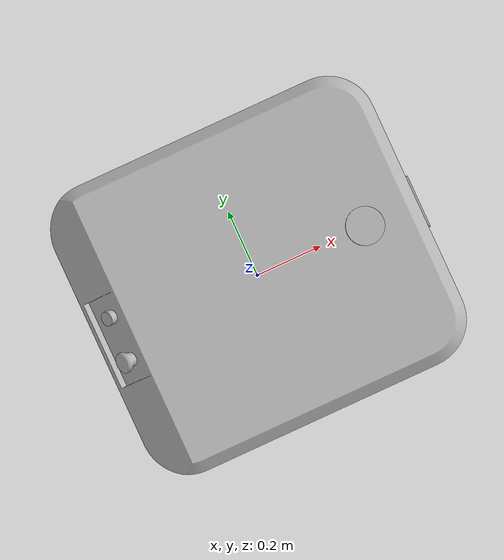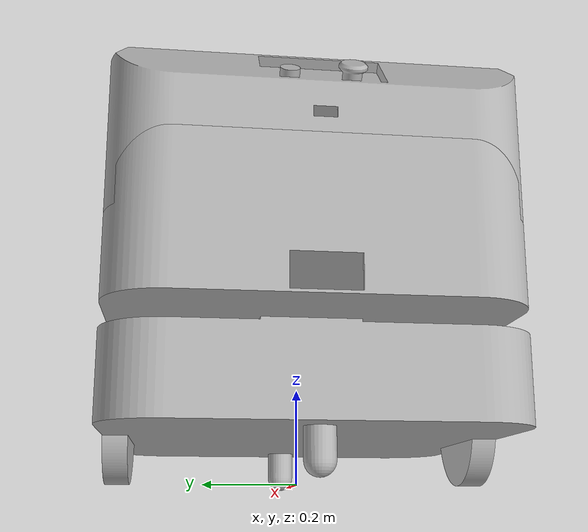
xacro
<?xml version="1.0" ?>
<robot name="mack" xmlns:xacro="http://www.ros.org/wiki/xacro">

<xacro:include filename="$(find mack_description)/urdf/materials.xacro" />
<xacro:include filename="$(find mack_description)/urdf/mack.trans" />
<xacro:include filename="$(find mack_description)/urdf/mack.gazebo" />

<link name="base_footprint">
  <visual>
    <origin xyz="0 0 0" rpy="0 0 0" />
    <geometry>
      <box size="0.0 0.0 0.0" />
    </geometry>
  </visual>
</link>

<joint name="fixed_base_joint" type="fixed">
  <parent link="base_footprint" />
  <child link="base_link" />
  <origin xyz="0 0 0" rpy="0 0 0" />
</joint>

<link name="base_link">
  <inertial>
    <origin xyz="-0.0007778903135426677 1.6502875620097167e-15 0.17822345657872354" rpy="0 0 0"/>
    <mass value="10.99878354396862"/>
    <inertia ixx="1.263419" iyy="1.444654" izz="2.497445" ixy="0.0" iyz="0.0" ixz="0.002027"/>
  </inertial>
  <visual>
    <origin xyz="0 0 0" rpy="0 0 0"/>
    <geometry>
      <mesh filename="file://$(find mack_description)/meshes/base_link.stl" scale="0.001 0.001 0.001"/>
    </geometry>
    <material name="silver"/>
  </visual>
  <collision>
    <origin xyz="0 0 0" rpy="0 0 0"/>
    <geometry>
      <mesh filename="file://$(find mack_description)/meshes/base_link.stl" scale="0.001 0.001 0.001"/>
    </geometry>
  </collision>
</link>

<link name="wheel_left_1">
  <inertial>
    <origin xyz="-2.2300015108860395e-14 -0.025290220820189058 -4.163336342344337e-17" rpy="0 0 0"/>
    <mass value="2.315432325512016"/>
    <inertia ixx="0.009481" iyy="0.017836" izz="0.009481" ixy="0.0" iyz="0.0" ixz="0.0"/>
  </inertial>
  <visual>
    <origin xyz="-0.0 0.35 -0.125" rpy="0 0 0"/>
    <geometry>
      <mesh filename="file://$(find mack_description)/meshes/wheel_left_1.stl" scale="0.001 0.001 0.001"/>
    </geometry>
    <material name="silver"/>
  </visual>
  <collision>
    <origin xyz="-0.0 0.35 -0.125" rpy="0 0 0"/>
    <geometry>
      <mesh filename="file://$(find mack_description)/meshes/wheel_left_1.stl" scale="0.001 0.001 0.001"/>
    </geometry>
  </collision>
</link>

<link name="wheel_right_1">
  <inertial>
    <origin xyz="-2.2238780663796043e-14 0.02529022082018928 -5.551115123125783e-17" rpy="0 0 0"/>
    <mass value="2.315432325512018"/>
    <inertia ixx="0.009481" iyy="0.017836" izz="0.009481" ixy="-0.0" iyz="-0.0" ixz="0.0"/>
  </inertial>
  <visual>
    <origin xyz="-0.0 -0.35 -0.125" rpy="0 0 0"/>
    <geometry>
      <mesh filename="file://$(find mack_description)/meshes/wheel_right_1.stl" scale="0.001 0.001 0.001"/>
    </geometry>
    <material name="silver"/>
  </visual>
  <collision>
    <origin xyz="-0.0 -0.35 -0.125" rpy="0 0 0"/>
    <geometry>
      <mesh filename="file://$(find mack_description)/meshes/wheel_right_1.stl" scale="0.001 0.001 0.001"/>
    </geometry>
  </collision>
</link>

<link name="floor2_1">
  <inertial>
    <origin xyz="0.004230213162797551 -2.749670496953375e-06 0.16565647169661446" rpy="0 0 0"/>
    <mass value="8.920345906190907"/>
    <inertia ixx="1.75095" iyy="1.931745" izz="2.974313" ixy="-1.9e-05" iyz="4e-06" ixz="-0.020385"/>
  </inertial>
  <visual>
    <origin xyz="-0.0 -0.0 -0.475" rpy="0 0 0"/>
    <geometry>
      <mesh filename="file://$(find mack_description)/meshes/floor2_1.stl" scale="0.001 0.001 0.001"/>
    </geometry>
    <material name="silver"/>
  </visual>
  <collision>
    <origin xyz="-0.0 -0.0 -0.475" rpy="0 0 0"/>
    <geometry>
      <mesh filename="file://$(find mack_description)/meshes/floor2_1.stl" scale="0.001 0.001 0.001"/>
    </geometry>
  </collision>
</link>

<link name="floor1_1">
  <inertial>
    <origin xyz="0.22623337099373322 1.7191798888926132e-16 0.10706606465888041" rpy="0 0 0"/>
    <mass value="8.28321579164062"/>
    <inertia ixx="1.292381" iyy="1.907305" izz="2.907554" ixy="0.0" iyz="-0.0" ixz="0.00152"/>
  </inertial>
  <visual>
    <origin xyz="0.225 -0.0 -0.31" rpy="0 0 0"/>
    <geometry>
      <mesh filename="file://$(find mack_description)/meshes/floor1_1.stl" scale="0.001 0.001 0.001"/>
    </geometry>
    <material name="silver"/>
  </visual>
  <collision>
    <origin xyz="0.225 -0.0 -0.31" rpy="0 0 0"/>
    <geometry>
      <mesh filename="file://$(find mack_description)/meshes/floor1_1.stl" scale="0.001 0.001 0.001"/>
    </geometry>
  </collision>
</link>

<link name="name_plate_1">
  <inertial>
    <origin xyz="0.05739682073390919 -0.0009999999999998344 -0.008647682156512404" rpy="0 0 0"/>
    <mass value="0.060008993223901956"/>
    <inertia ixx="5.2e-05" iyy="0.001148" izz="0.001097" ixy="0.0" iyz="0.0" ixz="3e-06"/>
  </inertial>
  <visual>
    <origin xyz="-0.0 0.4 -0.3925" rpy="0 0 0"/>
    <geometry>
      <mesh filename="file://$(find mack_description)/meshes/name_plate_1.stl" scale="0.001 0.001 0.001"/>
    </geometry>
    <material name="silver"/>
  </visual>
  <collision>
    <origin xyz="-0.0 0.4 -0.3925" rpy="0 0 0"/>
    <geometry>
      <mesh filename="file://$(find mack_description)/meshes/name_plate_1.stl" scale="0.001 0.001 0.001"/>
    </geometry>
  </collision>
</link>

<link name="lidar_1">
  <inertial>
    <origin xyz="-0.06 3.124274621132771e-17 0.009999999999999898" rpy="0 0 0"/>
    <mass value="0.166504410640259"/>
    <inertia ixx="0.00011" iyy="0.00011" izz="0.000208" ixy="-0.0" iyz="0.0" ixz="-0.0"/>
  </inertial>
  <visual>
    <origin xyz="-0.42 -0.0 -0.80" rpy="0 0 0"/>
    <geometry>
      <mesh filename="file://$(find mack_description)/meshes/lidar_1.stl" scale="0.001 0.001 0.001"/>
    </geometry>
    <material name="silver"/>
  </visual>
  <collision>
    <origin xyz="-0.42 -0.0 -0.80" rpy="0 0 0"/>
    <geometry>
      <mesh filename="file://$(find mack_description)/meshes/lidar_1.stl" scale="0.001 0.001 0.001"/>
    </geometry>
  </collision>
</link>

<link name="camera_1">
  <inertial>
    <origin xyz="0.004792230992219593 -0.00030298214458913107 3.116480004006217e-05" rpy="0 0 0"/>
    <mass value="0.03701026018938745"/>
    <inertia ixx="6.2e-05" iyy="3e-06" izz="6e-05" ixy="0.0" iyz="-0.0" ixz="-0.0"/>
  </inertial>
  <visual>
    <origin xyz="-0.45 -0.0 -0.695" rpy="0 0 0"/>
    <geometry>
      <mesh filename="file://$(find mack_description)/meshes/camera_1.stl" scale="0.001 0.001 0.001"/>
    </geometry>
    <material name="silver"/>
  </visual>
  <collision>
    <origin xyz="-0.45 -0.0 -0.695" rpy="0 0 0"/>
    <geometry>
      <mesh filename="file://$(find mack_description)/meshes/camera_1.stl" scale="0.001 0.001 0.001"/>
    </geometry>
  </collision>
</link>

<link name="ES_switch_1">
  <inertial>
    <origin xyz="-0.014358790675261301 -0.06000014973462447 0.01435842864211656" rpy="0 0 0"/>
    <mass value="0.057964622618710125"/>
    <inertia ixx="1.5e-05" iyy="1.4e-05" izz="1.5e-05" ixy="-0.0" iyz="0.0" ixz="-1e-06"/>
  </inertial>
  <visual>
    <origin xyz="0.384718 0.000443 -0.746998" rpy="0 0 0"/>
    <geometry>
      <mesh filename="file://$(find mack_description)/meshes/ES_switch_1.stl" scale="0.001 0.001 0.001"/>
    </geometry>
    <material name="silver"/>
  </visual>
  <collision>
    <origin xyz="0.384718 0.000443 -0.746998" rpy="0 0 0"/>
    <geometry>
      <mesh filename="file://$(find mack_description)/meshes/ES_switch_1.stl" scale="0.001 0.001 0.001"/>
    </geometry>
  </collision>
</link>

<link name="CS_switch_1">
  <inertial>
    <origin xyz="-0.0070711132047054925 0.059999850265375666 0.00707075117156053" rpy="0 0 0"/>
    <mass value="0.024610925269422813"/>
    <inertia ixx="4e-06" iyy="3e-06" izz="4e-06" ixy="-0.0" iyz="-0.0" ixz="-1e-06"/>
  </inertial>
  <visual>
    <origin xyz="0.384718 0.000443 -0.746998" rpy="0 0 0"/>
    <geometry>
      <mesh filename="file://$(find mack_description)/meshes/CS_switch_1.stl" scale="0.001 0.001 0.001"/>
    </geometry>
    <material name="silver"/>
  </visual>
  <collision>
    <origin xyz="0.384718 0.000443 -0.746998" rpy="0 0 0"/>
    <geometry>
      <mesh filename="file://$(find mack_description)/meshes/CS_switch_1.stl" scale="0.001 0.001 0.001"/>
    </geometry>
  </collision>
</link>

<joint name="Revolute 5" type="continuous">
  <origin xyz="0.0 -0.35 0.125" rpy="0 0 0"/>
  <parent link="base_link"/>
  <child link="wheel_left_1"/>
  <axis xyz="0.0 1.0 0.0"/>
</joint>

<joint name="Revolute 6" type="continuous">
  <origin xyz="0.0 0.35 0.125" rpy="0 0 0"/>
  <parent link="base_link"/>
  <child link="wheel_right_1"/>
  <axis xyz="0.0 1.0 0.0"/>
</joint>

<joint name="Rigid 7" type="fixed">
  <origin xyz="0.225 0.0 0.165" rpy="0 0 0"/>
  <parent link="floor1_1"/>
  <child link="floor2_1"/>
</joint>

<joint name="Rigid 8" type="fixed">
  <origin xyz="-0.225 0.0 0.31" rpy="0 0 0"/>
  <parent link="base_link"/>
  <child link="floor1_1"/>
</joint>

<joint name="Rigid 9" type="fixed">
  <origin xyz="0.225 -0.4 0.0825" rpy="0 0 0"/>
  <parent link="floor1_1"/>
  <child link="name_plate_1"/>
</joint>

<joint name="Rigid 10" type="fixed">
  <origin xyz="0.36 0.0 0.35" rpy="0 0 0"/>
  <parent link="floor2_1"/>
  <child link="lidar_1"/>
</joint>

<joint name="Rigid 11" type="fixed">
  <origin xyz="0.45 0.0 0.22" rpy="0 0 0"/>
  <parent link="floor2_1"/>
  <child link="camera_1"/>
</joint>

<joint name="Rigid 12" type="fixed">
  <origin xyz="-0.384718 -0.000443 0.271998" rpy="0 0 0"/>
  <parent link="floor2_1"/>
  <child link="ES_switch_1"/>
</joint>

<joint name="Rigid 13" type="fixed">
  <origin xyz="-0.384718 -0.000443 0.271998" rpy="0 0 0"/>
  <parent link="floor2_1"/>
  <child link="CS_switch_1"/>
</joint>

</robot>

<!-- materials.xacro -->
<robot name="mack" xmlns:xacro="http://www.ros.org/wiki/xacro" >

<material name="silver">
  <color rgba="0.700 0.700 0.700 1.000"/>
</material>

</robot>

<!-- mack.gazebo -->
<robot name="mack" xmlns:xacro="http://www.ros.org/wiki/xacro" >

<xacro:property name="floor_color" value="Gazebo/White" />
<xacro:property name="body_color" value="Gazebo/Grass" />
<xacro:property name="component_color" value="Gazebo/DarkGrey" />
<xacro:property name="wheel_color" value="Gazebo/White" />
<xacro:property name="name_color" value="Gazebo/Silver" />
<xacro:property name="ES_color" value="Gazebo/Red" />
<xacro:property name="CS_color" value="Gazebo/Green" />

<gazebo>
  <plugin name="control" filename="libgazebo_ros_control.so"/>
</gazebo>

  <gazebo>
    <plugin name="diff_drive_control" filename="libgazebo_ros_diff_drive.so">

      <!-- Update rate in Hz -->
      <update_rate>50</update_rate>

      <!-- wheels -->
      <left_joint>Revolute 6</left_joint>
      <right_joint>Revolute 5</right_joint>

      <!-- kinematics -->
      <wheel_separation>0.802</wheel_separation>
      <wheel_diameter>0.250</wheel_diameter>

      <!-- input -->
      <command_topic>cmd_vel</command_topic>

      <!-- output -->
      <publish_odom>true</publish_odom>
      <publish_odom_tf>true</publish_odom_tf>
      <publish_wheel_tf>true</publish_wheel_tf>

      <odometry_topic>odom</odometry_topic>
      <odometry_frame>odom</odometry_frame>
      <robot_base_frame>base_footprint</robot_base_frame>

    </plugin>
  </gazebo>

  <gazebo reference="lidar_1">
    <sensor type="ray" name="head_hokuyo_sensor">
      <pose>0 0 0 0 0 0</pose>
      <visualize>false</visualize>
      <update_rate>30</update_rate>
      <ray>
        <scan>
          <horizontal>
            <samples>300</samples>
            <resolution>1</resolution>
            <min_angle>-3.14</min_angle>
            <max_angle>3.14</max_angle>
          </horizontal>
        </scan>
        <range>
          <min>0.10</min>
          <max>30.0</max>
          <resolution>0.01</resolution>
        </range>
        <noise>
          <type>gaussian</type>
          <mean>0.0</mean>
          <stddev>0.01</stddev>
        </noise>
      </ray>
      <plugin name="my_ray_sensor_plugin" filename="libgazebo_ros_ray_sensor.so">
        <ros>
          <!-- Configure namespace and remap to publish to /ray/pointcloud2 -->
          <remapping>~/out:=scan</remapping>
        </ros>
        <!-- Output as a PointCloud2, see above for other types -->
        <output_type>sensor_msgs/LaserScan</output_type>
        <!-- Clip intensity values so all are above 100, optional -->
        <min_intensity>100.0</min_intensity>
        <!-- Frame id for header of output, defaults to sensor's parent link name -->
        <frame_name>lidar_1</frame_name>
      </plugin>
    </sensor>
  </gazebo>

  <gazebo reference="camera_1">
    <sensor name="camera" type="depth">
      <pose> 0 0 0 0 0 0</pose>
      <visualize>true</visualize>
      <update_rate>60.0</update_rate>
      <camera name="camera_1">
        <horizontal_fov>1.047198</horizontal_fov>
        <image>
          <width>640</width>
          <height>480</height>
          <format>R8G8B8</format>
        </image>
        <clip>
          <near>0.05</near>
          <far>10</far>
        </clip>
      </camera>
      <plugin name="depth_camera_controller" filename="libgazebo_ros_camera.so">
        <ros>
          <remapping>/camera/camera_info:=/camera/rgb/camera_info</remapping>
          <remapping>/camera/image_raw:=/camera/rgb/image_rect_color</remapping>
          <remapping>/camera/depth/image_raw:=/camera/depth_registered/image_raw</remapping>
        </ros>
        <baseline>0.2</baseline>
        <alwaysOn>true</alwaysOn>
        <updateRate>0.0</updateRate>
        <frame_name>depth_camera_v1_1</frame_name>
        <pointCloudCutoff>0.2</pointCloudCutoff>
        <pointCloudCutoffMax>10.0</pointCloudCutoffMax>
        <distortionK1>0</distortionK1>
        <distortionK2>0</distortionK2>
        <distortionK3>0</distortionK3>
        <distortionT1>0</distortionT1>
        <distortionT2>0</distortionT2>
        <CxPrime>0</CxPrime>
        <Cx>0</Cx>
        <Cy>0</Cy>
        <focalLength>0</focalLength>
        <hackBaseline>0</hackBaseline>
      </plugin>
    </sensor>
  </gazebo>

<gazebo reference="base_link">
  <material>${body_color}</material>
  <mu1>0.02</mu1>
  <mu2>0.02</mu2>
  <self_collide>true</self_collide>
  <gravity>true</gravity>
</gazebo>

<gazebo reference="wheel_left_1">
  <material>${wheel_color}</material>
  <mu1>8000</mu1>
  <mu2>8000</mu2>
  <self_collide>true</self_collide>
</gazebo>

<gazebo reference="wheel_right_1">
  <material>${wheel_color}</material>
  <mu1>8000</mu1>
  <mu2>8000</mu2>
  <self_collide>true</self_collide>
</gazebo>

<gazebo reference="floor2_1">
  <material>${floor_color}</material>
  <mu1>0.2</mu1>
  <mu2>0.2</mu2>
  <self_collide>true</self_collide>
</gazebo>

<gazebo reference="floor1_1">
  <material>${body_color}</material>
  <mu1>0.2</mu1>
  <mu2>0.2</mu2>
  <self_collide>true</self_collide>
</gazebo>

<gazebo reference="name_plate_1">
  <material>${name_color}</material>
  <mu1>0.2</mu1>
  <mu2>0.2</mu2>
  <self_collide>true</self_collide>
</gazebo>

<gazebo reference="lidar_1">
  <material>${component_color}</material>
  <mu1>0.2</mu1>
  <mu2>0.2</mu2>
  <self_collide>true</self_collide>
</gazebo>

<gazebo reference="camera_1">
  <material>${component_color}</material>
  <mu1>0.2</mu1>
  <mu2>0.2</mu2>
  <self_collide>true</self_collide>
</gazebo>

<gazebo reference="ES_switch_1">
  <material>${ES_color}</material>
  <mu1>0.2</mu1>
  <mu2>0.2</mu2>
  <self_collide>true</self_collide>
</gazebo>

<gazebo reference="CS_switch_1">
  <material>${CS_color}</material>
  <mu1>0.2</mu1>
  <mu2>0.2</mu2>
  <self_collide>true</self_collide>
</gazebo>

</robot>
